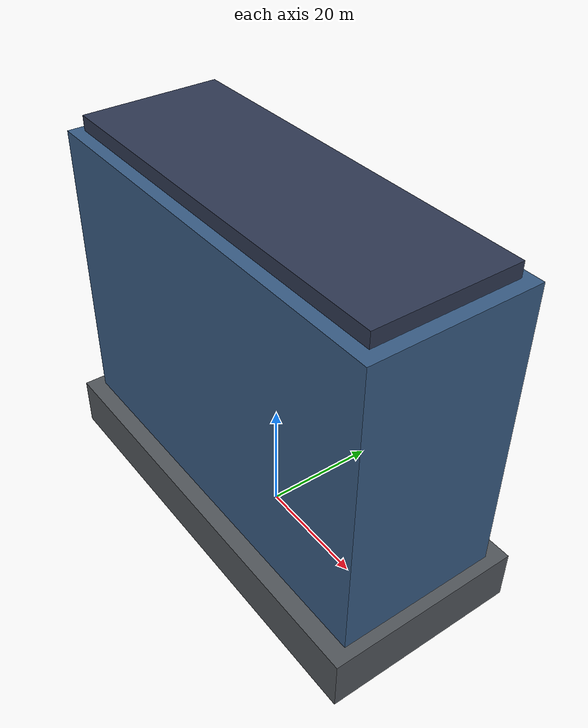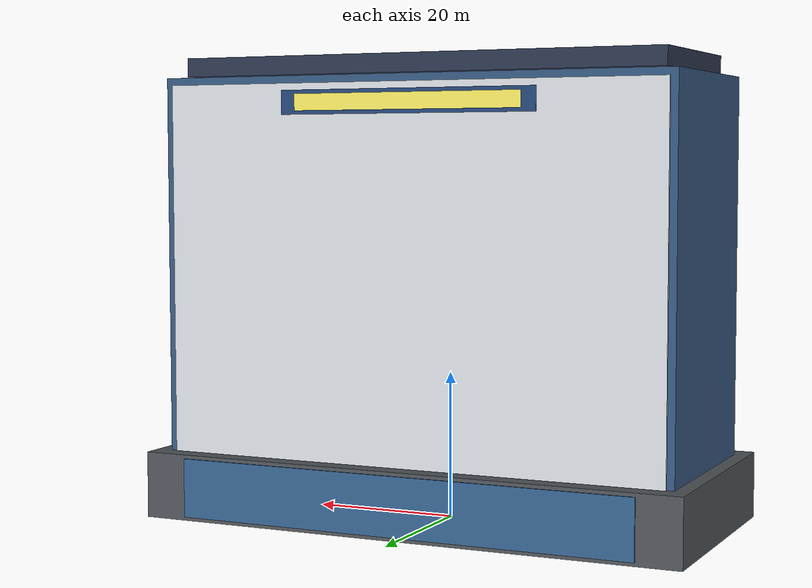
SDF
<?xml version="1.0" ?>
<sdf version="1.8">
  <model name="science_park_tech_innovation_tower">
    <static>true</static>
    <link name="tower_link">
      <collision name="podium_col">
        <pose>0 0 4.5 0 0 0</pose>
        <geometry><box><size>76.0 34.0 9.0</size></box></geometry>
      </collision>
      <collision name="tower_col">
        <pose>0 0 32.0 0 0 0</pose>
        <geometry><box><size>72.0 28.0 56.0</size></box></geometry>
      </collision>

      <!-- 裙樓與入口大廳 (1F~2F 挑高科技迎賓大廳) -->
      <visual name="podium_base">
        <pose>0 0 4.5 0 0 0</pose>
        <geometry><box><size>76.0 34.0 9.0</size></box></geometry>
        <material>
          <ambient>0.25 0.26 0.28 1</ambient>
          <diffuse>0.32 0.34 0.36 1</diffuse>
          <specular>0.7 0.7 0.7 1</specular>
        </material>
      </visual>
      <!-- 入口玻璃帷幕大廳 -->
      <visual name="podium_glass">
        <pose>0 17.1 4.5 0 0 0</pose>
        <geometry><box><size>64.0 0.2 8.0</size></box></geometry>
        <material>
          <ambient>0.15 0.28 0.40 0.9</ambient>
          <diffuse>0.22 0.40 0.58 0.9</diffuse>
          <specular>0.95 0.95 1.0 1</specular>
        </material>
      </visual>

      <!-- 主塔樓立面 (18F, 藍色節能鍍膜 Low-E 雙層玻璃帷幕) -->
      <visual name="tower_core">
        <pose>0 0 32.0 0 0 0</pose>
        <geometry><box><size>72.0 28.0 56.0</size></box></geometry>
        <material>
          <ambient>0.16 0.26 0.38 1</ambient>
          <diffuse>0.22 0.36 0.52 1</diffuse>
          <specular>0.95 0.98 1.0 1</specular>
        </material>
      </visual>
      <!-- 白色鋁合金建築遮陽飾條 (Horizontal Louvers) -->
      <visual name="facade_louvers">
        <pose>0 14.2 32.0 0 0 0</pose>
        <geometry><box><size>70.0 0.3 54.0</size></box></geometry>
        <material>
          <ambient>0.82 0.84 0.86 1</ambient>
          <diffuse>0.88 0.90 0.92 1</diffuse>
        </material>
      </visual>

      <!-- 企業標誌招牌 (TSMC / MEDIATEK / HSINCHU SCIENCE PARK) -->
      <visual name="logo_panel">
        <pose>0 14.35 56.5 0 0 0</pose>
        <geometry><box><size>36.0 0.15 3.2</size></box></geometry>
        <material>
          <ambient>0.10 0.20 0.35 1</ambient>
          <diffuse>0.15 0.28 0.48 1</diffuse>
        </material>
      </visual>
      <visual name="logo_text_glow">
        <pose>0 14.45 56.5 0 0 0</pose>
        <geometry><box><size>32.0 0.05 2.2</size></box></geometry>
        <material>
          <ambient>0.9 0.85 0.3 1</ambient>
          <diffuse>1.0 0.95 0.4 1</diffuse>
          <specular>1 1 1 1</specular>
        </material>
      </visual>

      <!-- 屋頂太陽能晶圓天際線構架 (Silicon Wafer Rooftop Pergola) -->
      <visual name="rooftop_solar">
        <pose>0 0 61.5 0 0 0</pose>
        <geometry><box><size>68.0 24.0 2.5</size></box></geometry>
        <material>
          <ambient>0.12 0.14 0.22 1</ambient>
          <diffuse>0.18 0.22 0.32 1</diffuse>
          <specular>0.8 0.85 0.9 1</specular>
        </material>
      </visual>
    </link>
  </model>
</sdf>
